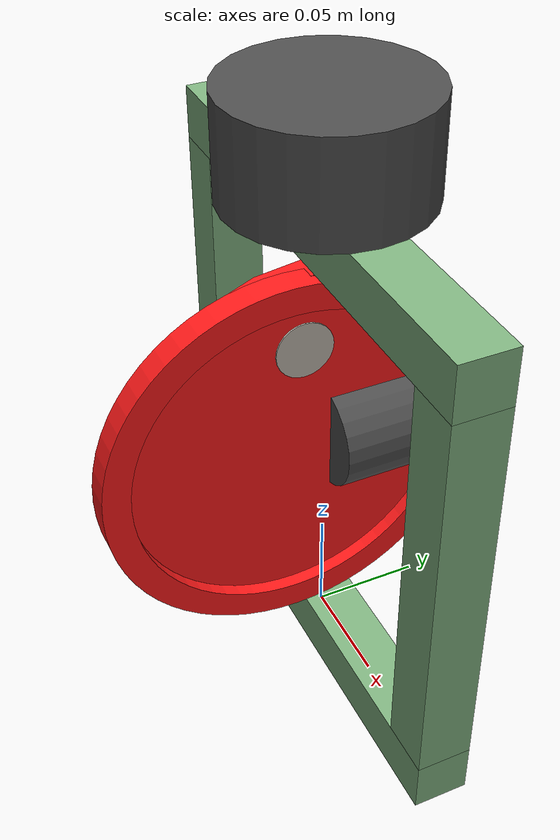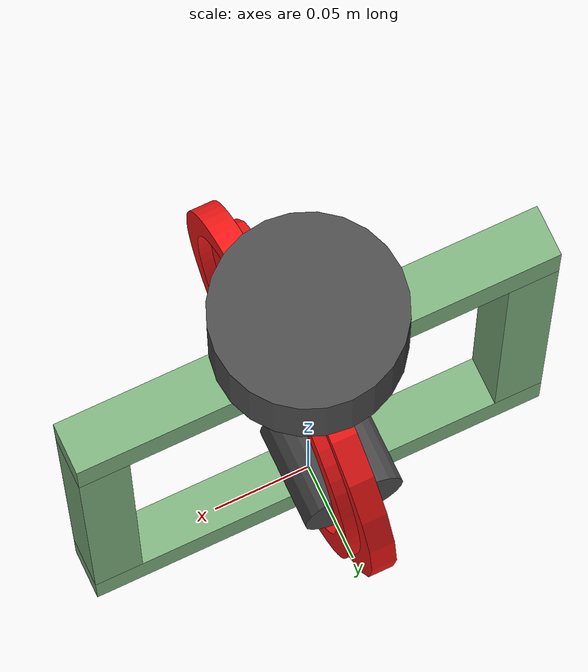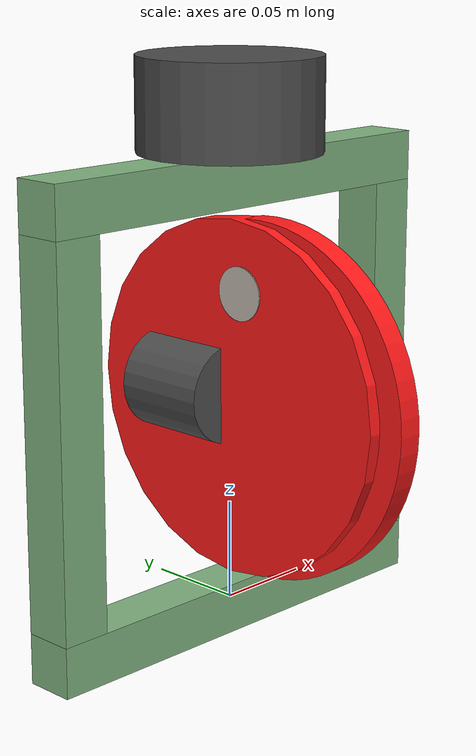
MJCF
<mujoco model="cmg_device">
  <compiler angle="radian" meshdir="../meshes/" texturedir="../textures/"/>

  <option timestep="0.001" gravity="0 0 -9.81"/>

  <default>
    <geom contype="1" conaffinity="1" friction="1 0.005 0.0001"/>
  </default>

  <asset>
    <mesh name="flywheel_annulus_mesh" file="annular_disk_178out_152in_diam.stl" scale="0.001 0.001 0.001"/>
    <texture name="flywheel_marker_texture" type="2d" file="pieslice512x512.jpg"/>
    <material name="flywheel_marker_material" texture="flywheel_marker_texture" rgba="1 1 1 1"/>
  </asset>

  <worldbody>
    <body name="cmg_base" pos="0 0 0">
      <inertial pos="0 0 0.1064" mass="0.288791" diaginertia="0.001469 0.002751 0.001284"/>

      <geom name="bar_1B_visual" type="box" size="0.1189 0.0125 0.0125" contype="0" conaffinity="0" group="1" rgba="0.5 0.7 0.5 1"/>
      <geom name="bar_1B_collision" type="box" size="0.1189 0.0125 0.0125" group="3" rgba="0.5 0.5 0.5 0.25"/>
      <geom name="bar_2L_visual" type="box" pos="-0.1064 0 0.1064" size="0.0125 0.0125 0.0939" contype="0" conaffinity="0" group="1" rgba="0.5 0.7 0.5 1"/>
      <geom name="bar_2L_collision" type="box" pos="-0.1064 0 0.1064" size="0.0125 0.0125 0.0939" group="3" rgba="0.5 0.5 0.5 0.25"/>
      <geom name="bar_2R_visual" type="box" pos="0.1064 0 0.1064" size="0.0125 0.0125 0.0939" contype="0" conaffinity="0" group="1" rgba="0.5 0.7 0.5 1"/>
      <geom name="bar_2R_collision" type="box" pos="0.1064 0 0.1064" size="0.0125 0.0125 0.0939" group="3" rgba="0.5 0.5 0.5 0.25"/>
      <geom name="bar_1T_visual" type="box" pos="0 0 0.2128" size="0.1189 0.0125 0.0125" contype="0" conaffinity="0" group="1" rgba="0.5 0.7 0.5 1"/>
      <geom name="bar_1T_collision" type="box" pos="0 0 0.2128" size="0.1189 0.0125 0.0125" group="3" rgba="0.5 0.5 0.5 0.25"/>

      <body name="torque_servo" pos="0 0 0.2483">
        <inertial pos="0 0 0" mass="1.089" diaginertia="0.000743 0.000743 0.001103"/>
        <geom name="torque_servo_visual" type="cylinder" size="0.045 0.023" contype="0" conaffinity="0" group="1" rgba="0.3 0.3 0.3 1"/>
        <geom name="torque_servo_collision" type="cylinder" size="0.045 0.023" group="3" rgba="0.5 0.5 0.5 0.25"/>

        <body name="flywheel_servo" pos="0 0 -0.1423">
          <joint name="roll_moment_joint" type="hinge" axis="0 0 1" range="-1.5708 1.5708" limited="true" actuatorfrcrange="-22.6 22.6" damping="0.1"/>
          <inertial pos="0 0.025 0" quat="0.707107 0.707107 0 0" mass="0.559" diaginertia="0.000203 0.000203 0.000175"/>
          <geom name="flywheel_servo_visual" type="cylinder" pos="0 0.025 0" quat="0.707107 0.707107 0 0" size="0.025 0.025" contype="0" conaffinity="0" group="1" rgba="0.3 0.3 0.3 1"/>
          <geom name="flywheel_servo_collision" type="cylinder" pos="0 0.025 0" quat="0.707107 0.707107 0 0" size="0.025 0.025" group="3" rgba="0.5 0.5 0.5 0.25"/>

          <body name="flywheel_disk1">
            <joint name="flywheel_joint" type="hinge" axis="0 1 0" actuatorfrcrange="-1000 1000"/>
            <inertial pos="0 -0.00635 0" quat="0.5 0.5 0.5 0.5" mass="0.851375" diaginertia="0.001694 0.001694 0.003364"/>
            <geom name="flywheel_disk_visual" type="cylinder" pos="0 -0.00635 0" quat="0.5 0.5 0.5 0.5" size="0.0889 0.00635" contype="0" conaffinity="0" group="1" rgba="1.0 0.1 0.1 1"/>
            <geom name="flywheel_disk_collision" type="cylinder" pos="0 -0.0127 0" quat="0.5 0.5 0.5 0.5" size="0.0889 0.0127" group="3" rgba="0.5 0.5 0.5 0.25"/>
            <geom name="flywheel_marker_visual" type="cylinder" pos="0 -0.0127 0.05334" quat="0.5 0.5 0.5 0.5" size="0.013335 0.006985" material="flywheel_marker_material" contype="0" conaffinity="0" group="1"/>

            <body name="flywheel_annulus">
              <inertial pos="0 -0.01905 0" quat="0.5 0.5 0.5 0.5" mass="0.225875" diaginertia="0.000777 0.000777 0.001548"/>
              <geom name="flywheel_annulus_visual" pos="0 -0.01905 0" quat="0.5 0.5 0.5 0.5" type="mesh" mesh="flywheel_annulus_mesh" contype="0" conaffinity="0" group="1" rgba="1.0 0.1 0.1 1"/>
            </body>
          </body>
        </body>
      </body>
    </body>
  </worldbody>

  <actuator>
    <motor name="roll_moment_motor" joint="roll_moment_joint" ctrllimited="true" ctrlrange="-22.6 22.6"/>
    <velocity name="flywheel_velocity" joint="flywheel_joint" kv="270" ctrllimited="true" ctrlrange="-593.761 593.761"/>
  </actuator>
</mujoco>
